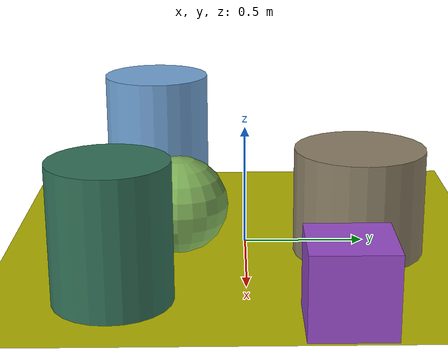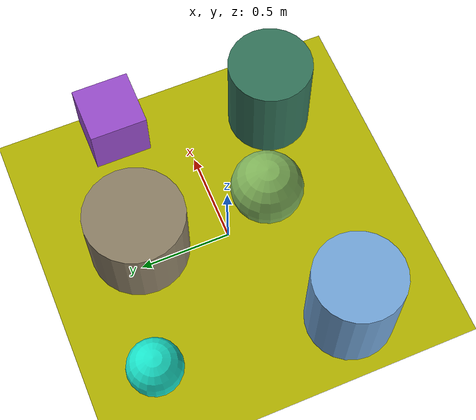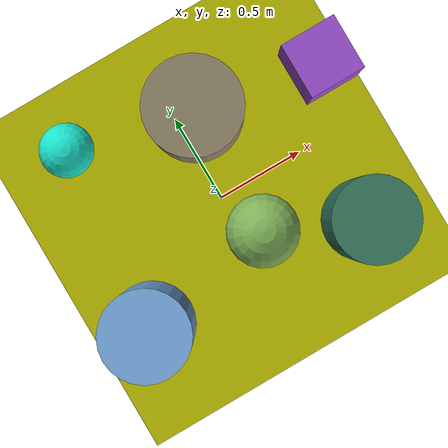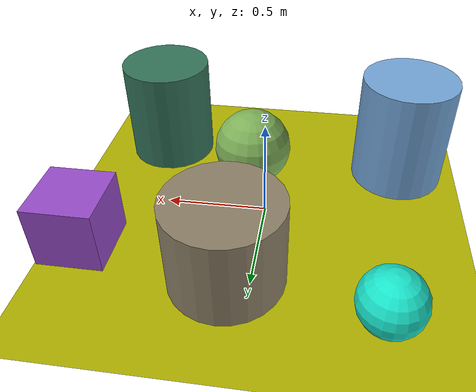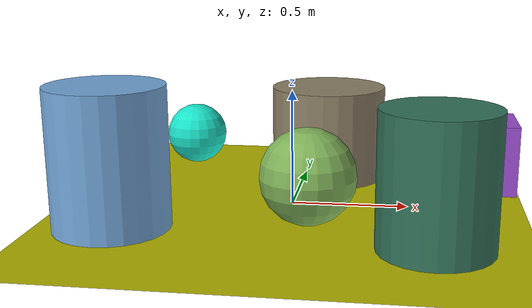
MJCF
<mujoco>
   <asset>
<texture type="skybox" builtin="gradient" rgb1="0.6 0.3 0.1" rgb2="0.2 0.2 0.9" width="256" height="256"/>
<texture name="checker_0" builtin="checker" type="2d" rgb1="0.9 0.5 0.7" rgb2="0.2 0.5 0.1" width="200" height="200"/>
<texture name="gradient_1" builtin="gradient" rgb1="0.3 0.9 0.8" rgb2="0.6 0.4 0.9" width="200" height="200"/>
<texture name="checker_2" builtin="checker" type="2d" rgb1="0.1 0.2 0.1" rgb2="0.3 0.7 0.6" width="200" height="200"/>
<texture name="checker_3" builtin="checker" type="2d" rgb1="0.8 0.5 0.3" rgb2="0.2 0.9 0.4" width="200" height="200"/>
<texture name="flat_4" builtin="flat" rgb1="0.1 0.9 0.8" rgb2="0.1 0.9 0.8"  width="200" height="200"/>
<texture name="flat_5" builtin="flat" rgb1="0.6 0.3 0.8" rgb2="0.6 0.3 0.8"  width="200" height="200"/><material name="checker_0_mat" reflectance="0" texrepeat="4 4" texture="checker_0" texuniform="false" />
<material name="gradient_1_mat" reflectance="0" texture="gradient_1" texuniform="true"/>
<material name="checker_2_mat" reflectance="0" texrepeat="5 5" texture="checker_2" texuniform="false" />
<material name="checker_3_mat" reflectance="0" texrepeat="8 8" texture="checker_3" texuniform="false" />
<material name="flat_4_mat" reflectance="0" texture="flat_4" texuniform="true"/>
<material name="flat_5_mat" reflectance="0" texture="flat_5" texuniform="true"/>
   </asset>

   <worldbody>
      <light diffuse=".9 .9 .9" pos="0 0 3" dir="0 0 -1"/>
     <geom type="plane" size="1 1 0.1" rgba="0.7 0.7 0.0 1"/>
<geom type="cylinder" pos="0.11 0.47 0.22" size="0.27 0.22 0.22" material="checker_0_mat" />
<geom type="cylinder" pos="-0.68 -0.41 0.29" size="0.24 0.29 0.29" material="gradient_1_mat" />
<geom type="cylinder" pos="0.61 -0.5 0.27" size="0.23 0.27 0.27" material="checker_2_mat" />
<geom type="sphere" pos="0.1 -0.27 0.2" size="0.2 0.2 0.2" material="checker_3_mat" />
<geom type="sphere" pos="-0.59 0.64 0.15" size="0.15 0.15 0.15" material="flat_4_mat" />
<geom type="box" pos="0.83 0.36 0.16" size="0.16 0.16 0.16" material="flat_5_mat" /><camera euler="60 0 180" fovy="60" name="camera_a" pos="0 -1.5 1"></camera>   </worldbody>
</mujoco>
